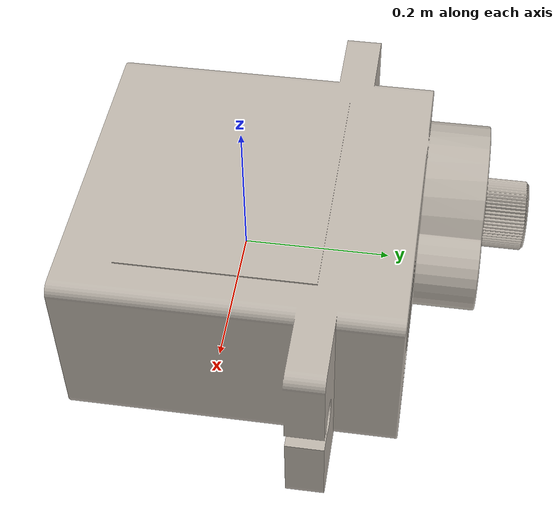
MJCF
<mujoco model="servo_demo">
  <asset>
    <texture name="tex_servo" file="./servo_body_texture.png" type="2d"/>
    <material name="mat_servo" texture="tex_servo" specular="0.3"/>

    <mesh name="mesh_body" file="./servo_body.obj" scale="20 20 20"/>
  </asset>

  <worldbody>
    <light pos="0 0 1" dir="0 0 -1" diffuse="1 1 1"/>

    <body name="my_servo" pos="0 0 0">

        <geom type="mesh" mesh="mesh_body" material="mat_servo"/>
    </body>

  </worldbody>
</mujoco>
